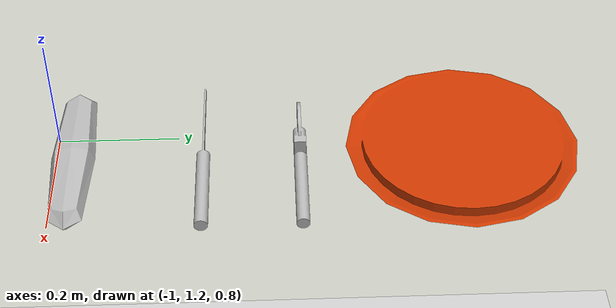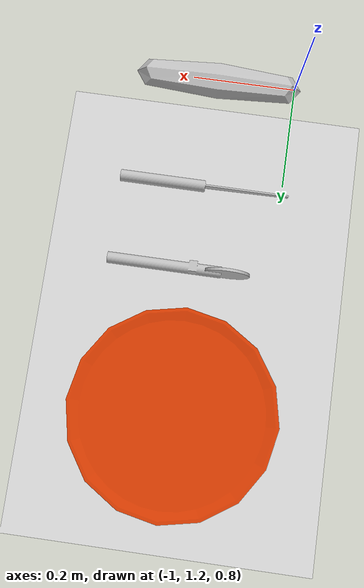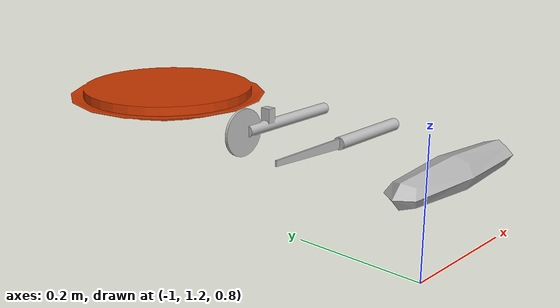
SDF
<?xml version="1.0" ?>
<sdf version="1.4">
  <world name="default">

    <!-- A ground plane -->
    <include>
      <uri>model://ground_plane</uri>
    </include>

    <!-- A global light source -->
    <include>
      <uri>model://sun</uri>
    </include>

    <!-- initial camera perspective -->
    <gui fullscreen='0'>
      <camera name='user_camera'>
        <pose frame=''>-2.36603 -4.4773 3.65853 0 0.599643 1.01619</pose>
        <view_controller>orbit</view_controller>
      </camera>
    </gui>

    <include>
     <name>pizza_cutter</name>
     <uri>model://pizza_cutter</uri>
     <pose>-0.95 1.6 0.9 3.141 -1.57 0.0</pose>
    </include>
    <include>
     <name>pizza_plate</name>
     <uri>model://pizza_plate</uri>
     <pose>-0.85 1.85 0.9 0 0 3.141</pose>
    </include>

    <include>
     <name>knife</name>
     <uri>model://knife</uri>
     <pose>-0.85 1.45 0.9 0 0 3.141</pose>
    </include>
    <include>
     <name>bread</name>
     <uri>model://bread</uri>
     <pose>-0.85 1.25 0.9 0 0 3.141</pose>
    </include>

    <plugin name="attache" filename="libattache.so"/>

    <plugin name="gazebo_visibility_ros" filename="libgazebo_visibility_ros.so" />

  </world>
</sdf>

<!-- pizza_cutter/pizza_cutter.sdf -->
<sdf version="1.5">
  <model name="pizza_cutter">
    <link name="pizza_cutter">
      <gravity>false</gravity>
      <inertial>
        <mass>0.02</mass>
      </inertial>
      <collision name="pizza_cutter_collision">
        <origin xyz="0 0 0.17" rpy="0 0 0"/>
        <geometry><box><size>0.0001 0.0001 0.0001</size></box></geometry>
          <surface>
            <contact>
              <collide_without_contact>true</collide_without_contact>
            </contact>
          </surface>
      </collision>
      <visual name="pizza_cutter_visual">
        <geometry>
          <mesh>
            <uri>model://pizza_cutter/meshes/pizza_cutter.stl</uri>
          </mesh>
        </geometry>
      </visual>
    </link>
  </model>
</sdf>

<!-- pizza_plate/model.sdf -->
<sdf version="1.5">
  <model name="pizza_plate">
    <link name="pizza_plate">
      <gravity>false</gravity>
      <inertial>
        <mass>0.02</mass>
      </inertial>
      <collision name="collision">
        <geometry><box><size>0.0001 0.0001 0.0001</size></box></geometry>
          <surface>
            <contact>
              <collide_without_contact>true</collide_without_contact>
            </contact>
          </surface>
      </collision>
      <visual name="visual">
        <geometry>
          <mesh>
            <uri>model://pizza_plate/meshes/pizza_plate_visual.dae</uri>
          </mesh>
        </geometry>
      </visual>
    </link>
  </model>
</sdf>

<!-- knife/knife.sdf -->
<sdf version="1.5">
  <model name="knife">
    <link name="knife">
      <gravity>false</gravity>
      <inertial>
        <mass>0.02</mass>
      </inertial>
      <collision name="knife_collision">
        <geometry><box><size>0.0001 0.0001 0.0001</size></box></geometry>
          <surface>
            <contact>
              <collide_without_contact>true</collide_without_contact>
            </contact>
          </surface>
      </collision>
      <visual name="knife_visual">
        <geometry>
          <mesh>
            <uri>model://knife/meshes/knife.stl</uri>
          </mesh>
        </geometry>
      </visual>
    </link>
  </model>
</sdf>

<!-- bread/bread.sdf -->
<sdf version="1.5">
  <model name="bread">
    <link name="bread">
      <gravity>false</gravity>
      <inertial>
        <mass>0.02</mass>
      </inertial>
      <collision name="bread_collision">
        <geometry><box><size>0.0001 0.0001 0.0001</size></box></geometry>
          <surface>
            <contact>
              <collide_without_contact>true</collide_without_contact>
            </contact>
          </surface>
      </collision>
      <visual name="bread_visual">
        <geometry>
          <mesh>
            <uri>model://bread/meshes/bread.stl</uri>
          </mesh>
        </geometry>
      </visual>
    </link>
  </model>
</sdf>
